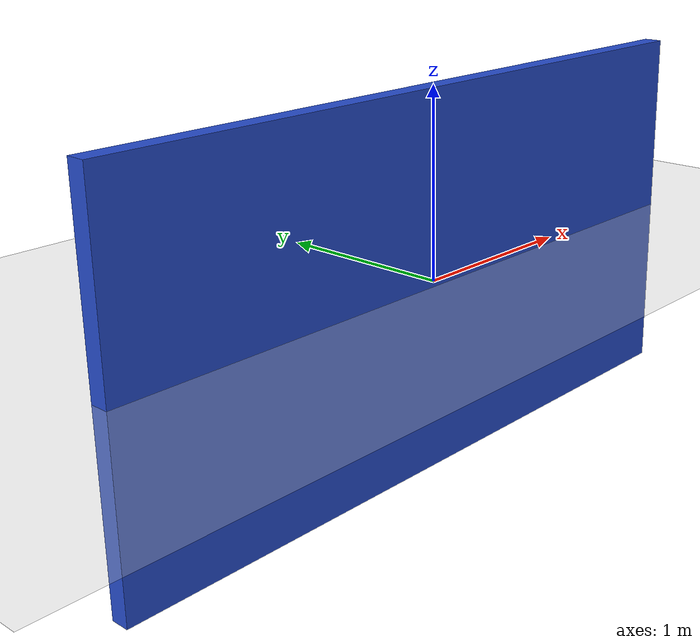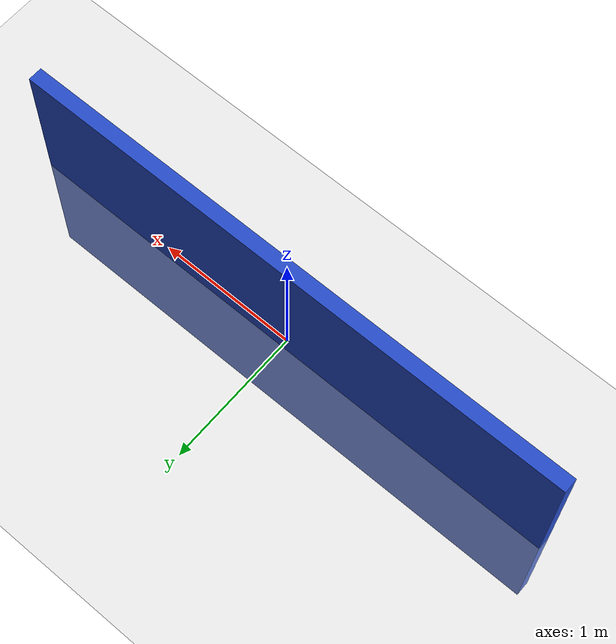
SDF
<?xml version="1.0" ?>
<sdf version="1.6">
  <world name="default">
    <!-- Sun -->
    <include>
      <uri>model://sun</uri>
    </include>

    <!-- Ground Plane -->
    <include>
      <uri>model://ground_plane</uri>
    </include>

    <!-- A simple wall -->
    <model name="simple_wall">
      <pose>0 0 0 0 0 0</pose>
      <static>true</static>
      <link name="link">
        <collision name="collision">
          <geometry>
            <box>
              <size>4 0.1 2</size> <!-- Length, Width, Height -->
            </box>
          </geometry>
        </collision>
        <visual name="visual">
          <geometry>
            <box>
              <size>4 0.1 2</size> <!-- Length, Width, Height -->
            </box>
          </geometry>
          <material>
            <script>
              <uri>file://media/materials/scripts/gazebo.material</uri>
              <name>Gazebo/Blue</name>
            </script>
          </material>
        </visual>
      </link>
    </model>

    <!-- Physics -->
    <physics name="default_physics" type="ode">
      <max_step_size>0.001</max_step_size>
      <real_time_factor>1</real_time_factor>
      <real_time_update_rate>1000</real_time_update_rate>
    </physics>
  </world>
</sdf>
